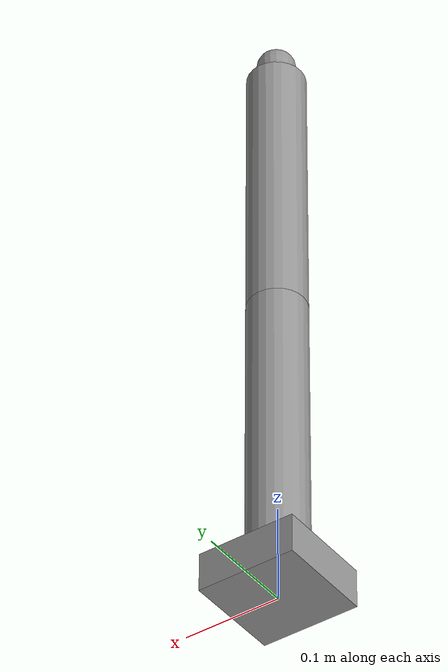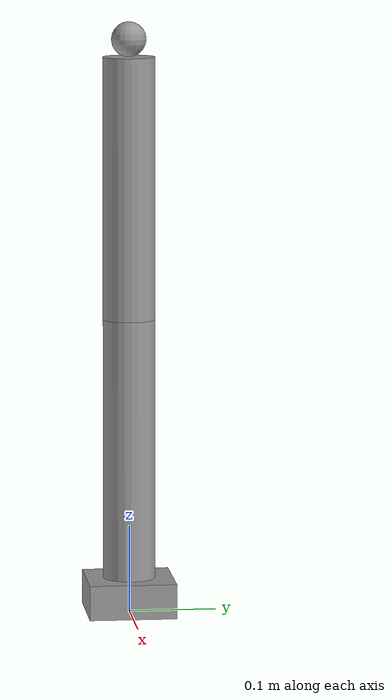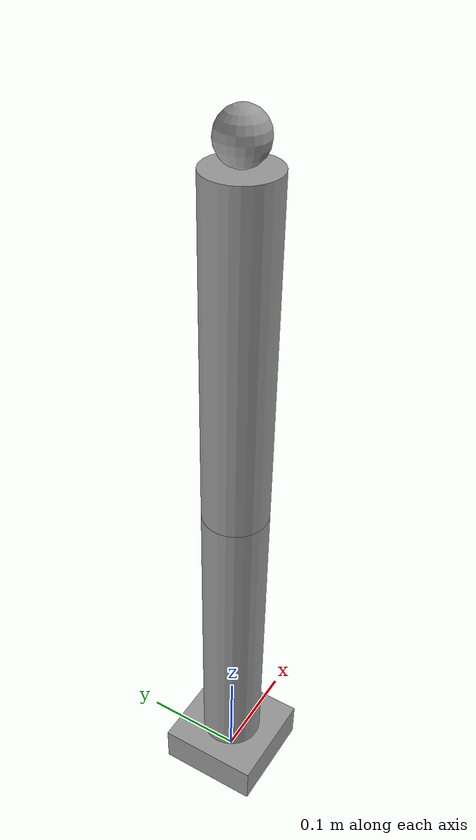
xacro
<?xml version="1.0"?>
<!-- Sample three-link arm used by demos and tests. -->
<!-- Kept deliberately small: one root, revolute + continuous joints. -->
<robot name="sample_arm" xmlns:xacro="http://www.ros.org/wiki/xacro">

  <xacro:property name="link_radius" value="0.03"/>
  <xacro:property name="link_length" value="0.30"/>

  <material name="grey">
    <color rgba="0.6 0.6 0.6 1.0"/>
  </material>

  <link name="base_link">
    <visual>
      <origin xyz="0 0 0.02" rpy="0 0 0"/>
      <geometry>
        <box size="0.10 0.10 0.04"/>
      </geometry>
      <material name="grey"/>
    </visual>
    <collision>
      <origin xyz="0 0 0.02" rpy="0 0 0"/>
      <geometry>
        <box size="0.10 0.10 0.04"/>
      </geometry>
    </collision>
    <inertial>
      <mass value="1.0"/>
      <inertia ixx="0.001" ixy="0.0" ixz="0.0"
               iyy="0.001" iyz="0.0" izz="0.001"/>
    </inertial>
  </link>

  <link name="link_1">
    <visual>
      <origin xyz="0 0 ${link_length / 2}" rpy="0 0 0"/>
      <geometry>
        <cylinder radius="${link_radius}" length="${link_length}"/>
      </geometry>
      <material name="grey"/>
    </visual>
    <collision>
      <origin xyz="0 0 ${link_length / 2}" rpy="0 0 0"/>
      <geometry>
        <cylinder radius="${link_radius}" length="${link_length}"/>
      </geometry>
    </collision>
    <inertial>
      <mass value="0.5"/>
      <inertia ixx="0.001" ixy="0.0" ixz="0.0"
               iyy="0.001" iyz="0.0" izz="0.001"/>
    </inertial>
  </link>

  <link name="link_2">
    <visual>
      <origin xyz="0 0 ${link_length / 2}" rpy="0 0 0"/>
      <geometry>
        <cylinder radius="${link_radius}" length="${link_length}"/>
      </geometry>
      <material name="grey"/>
    </visual>
    <collision>
      <origin xyz="0 0 ${link_length / 2}" rpy="0 0 0"/>
      <geometry>
        <cylinder radius="${link_radius}" length="${link_length}"/>
      </geometry>
    </collision>
    <inertial>
      <mass value="0.5"/>
      <inertia ixx="0.001" ixy="0.0" ixz="0.0"
               iyy="0.001" iyz="0.0" izz="0.001"/>
    </inertial>
  </link>

  <link name="tool_link">
    <visual>
      <origin xyz="0 0 0.02" rpy="0 0 0"/>
      <geometry>
        <sphere radius="0.02"/>
      </geometry>
      <material name="grey"/>
    </visual>
    <inertial>
      <mass value="0.1"/>
      <inertia ixx="0.0001" ixy="0.0" ixz="0.0"
               iyy="0.0001" iyz="0.0" izz="0.0001"/>
    </inertial>
  </link>

  <!-- Bounded rotation: requires axis + finite limits. -->
  <joint name="shoulder" type="revolute">
    <parent link="base_link"/>
    <child link="link_1"/>
    <origin xyz="0 0 0.04" rpy="0 0 0"/>
    <axis xyz="0 0 1"/>
    <limit lower="-1.57" upper="1.57" effort="10.0" velocity="1.0"/>
  </joint>

  <!-- Bounded rotation about the arm's pitch axis. -->
  <joint name="elbow" type="revolute">
    <parent link="link_1"/>
    <child link="link_2"/>
    <origin xyz="0 0 ${link_length}" rpy="0 0 0"/>
    <axis xyz="0 1 0"/>
    <limit lower="-1.57" upper="1.57" effort="10.0" velocity="1.0"/>
  </joint>

  <!-- Unbounded rotation: requires axis, wraps at runtime. -->
  <joint name="wrist" type="continuous">
    <parent link="link_2"/>
    <child link="tool_link"/>
    <origin xyz="0 0 ${link_length}" rpy="0 0 0"/>
    <axis xyz="0 0 1"/>
  </joint>

</robot>
